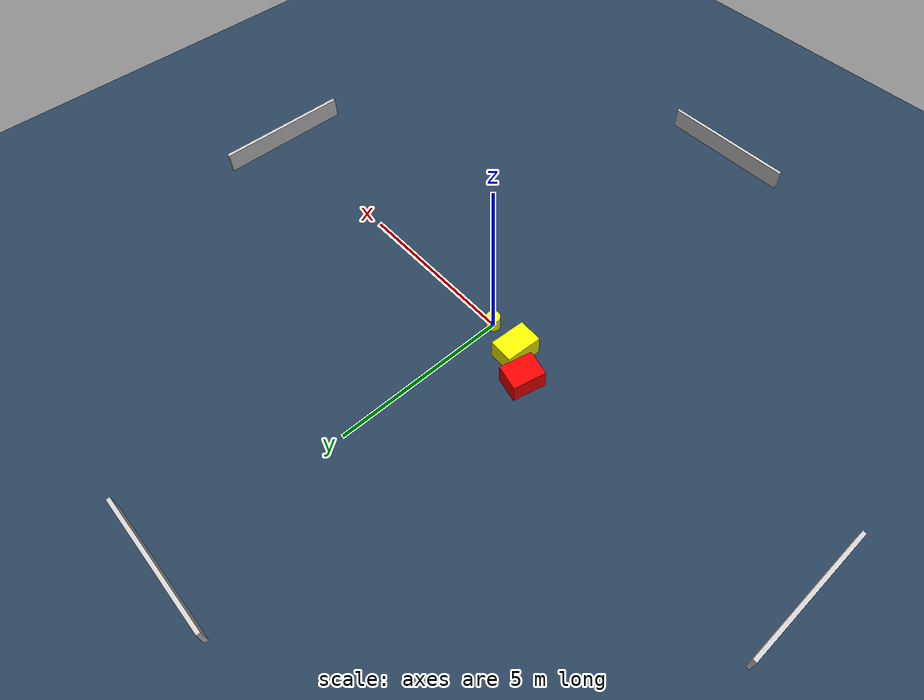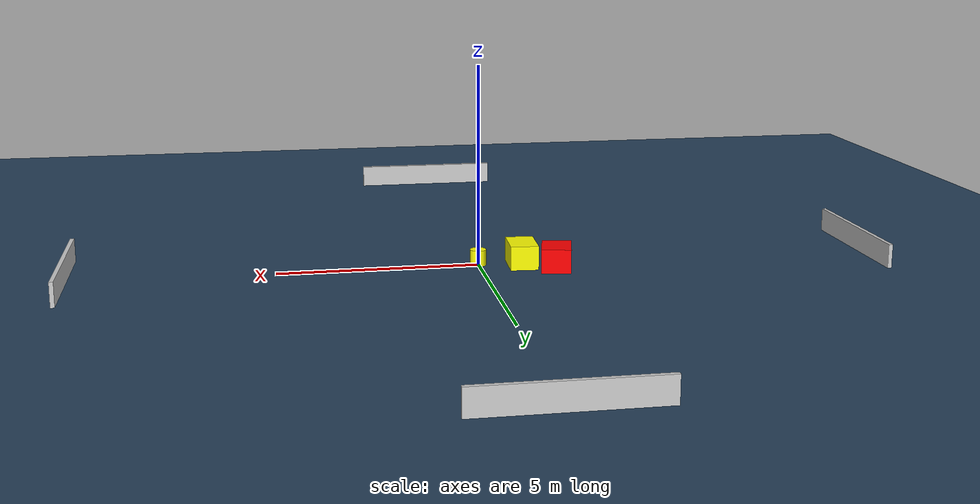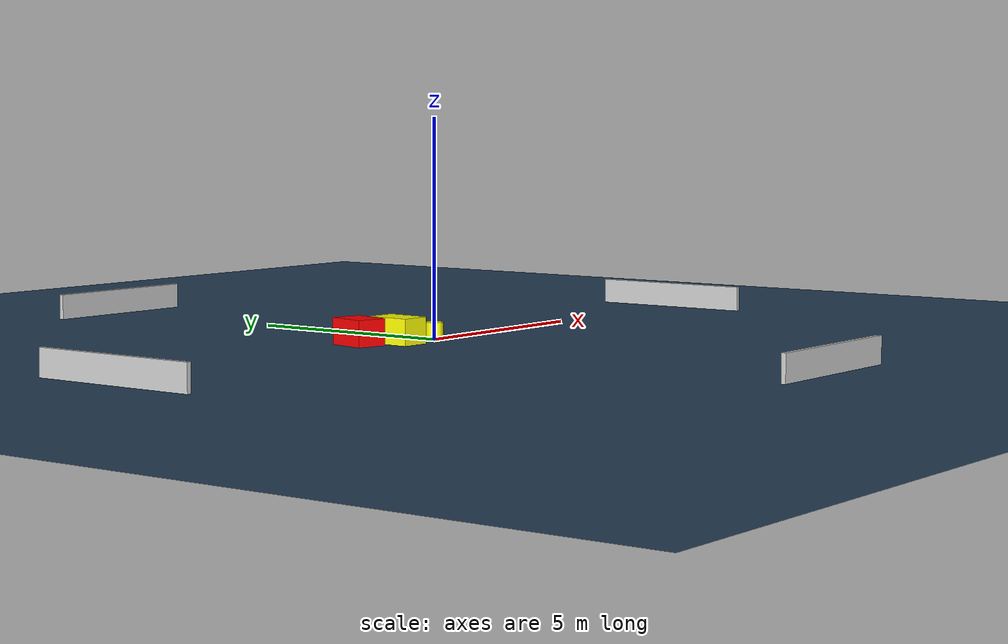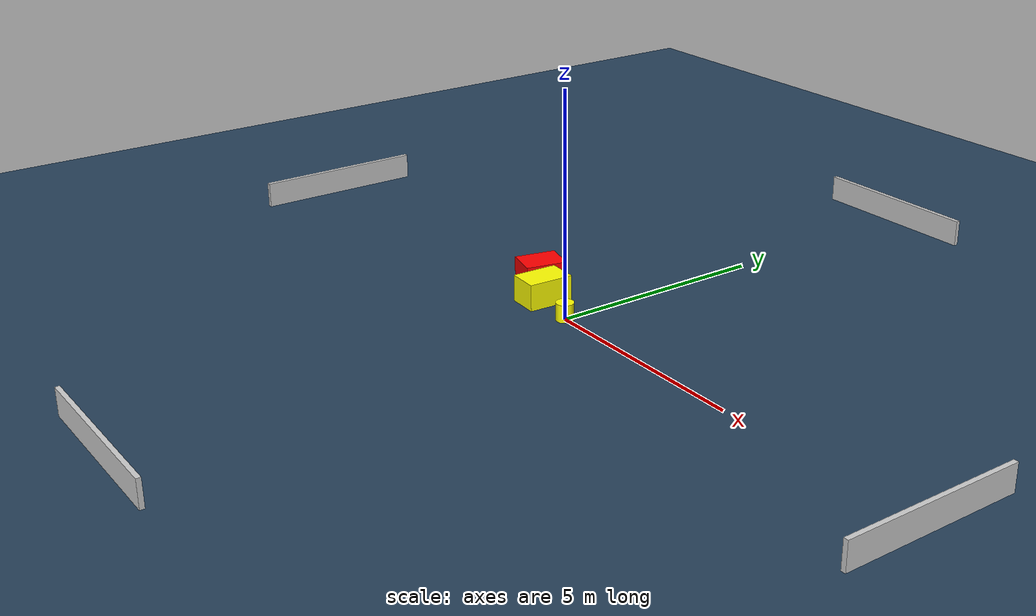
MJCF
<?xml version="1.0" ?>
<mujoco model="generated_environment">
  <option timestep="0.01" integrator="RK4" cone="elliptic"/>
  <default>
    <geom density="1"/>
  </default>
  <asset>
    <texture builtin="gradient" height="3072" name="skybox" rgb1="0.3 0.5 0.7" rgb2="0 0 0" type="skybox" width="512"/>
    <texture builtin="checker" height="300" name="groundplane" rgb1="0.2 0.3 0.4" rgb2="0.1 0.2 0.3" type="2d" width="300"/>
    <material name="groundplane" reflectance="0.2" texrepeat="5 5" texture="groundplane"/>
  </asset>
  <worldbody>
    <light dir="0 0 -1" directional="true" pos="0 0 1.5"/>
    <geom condim="3" friction="0.5 0.005 0.001" material="groundplane" name="floor" pos="0 0 0" size="0 0 0.05" type="plane"/>
    <body name="walls">
      <geom name="wall_1" condim="4" pos="-10.0 0.0 0.3" rgba="0.800000011920929 0.800000011920929 0.800000011920929 1.0" size="0.05 2.0 0.3" type="box"/>
      <geom name="wall_2" condim="4" pos="10.0 0.0 0.3" rgba="0.800000011920929 0.800000011920929 0.800000011920929 1.0" size="0.05 2.0 0.3" type="box"/>
      <geom name="wall_3" condim="4" pos="0.0 -10.0 0.3" rgba="0.800000011920929 0.800000011920929 0.800000011920929 1.0" size="2.0 0.05 0.3" type="box"/>
      <geom name="wall_4" condim="4" pos="0.0 10.0 0.3" rgba="0.800000011920929 0.800000011920929 0.800000011920929 1.0" size="2.0 0.05 0.3" type="box"/>
    </body>
    <body name="robot">
      <joint name="joint_x" type="slide" pos="0 0 0" axis="1 0 0"/>
      <joint name="joint_y" type="slide" pos="0 0 0" axis="0 1 0"/>
      <geom name="robot" type="cylinder" pos="0.0 0.0 0.2" size="0.2 0.2 0.0" mass="5.0" friction="1.0 0.005 0.0001" condim="4" rgba="1.0 1.0 0.0 1.0"/>
    </body>
    <body name="obstacle_1_movable">
      <geom name="obstacle_1_movable" condim="4" pos="-1.0720840740219704 0.1867774357239594 0.3" euler="0 0 357.05059434754367" friction="0.0 0.005 0.001" rgba="1.0 1.0 0.0 1.0" size="0.3475470088601601 0.5143318841372791 0.3" type="box" mass="0.1"/>
      <joint type="free"/>
    </body>
    <body name="obstacle_2_static">
      <geom name="obstacle_2_static" condim="4" pos="-1.8429454370288076 0.675633713535685 0.3" euler="0 0 257.16916350081834" friction="0.0 0.005 0.001" rgba="1.0 0.0 0.0 1.0" size="0.4693812533399967 0.36574902313975394 0.3" type="box"/>
    </body>
  </worldbody>
  <actuator>
    <motor name="actuator_x" joint="joint_x" gear="1" ctrlrange="-1 1"/>
    <motor name="actuator_y" joint="joint_y" gear="1" ctrlrange="-1 1"/>
  </actuator>
</mujoco>
